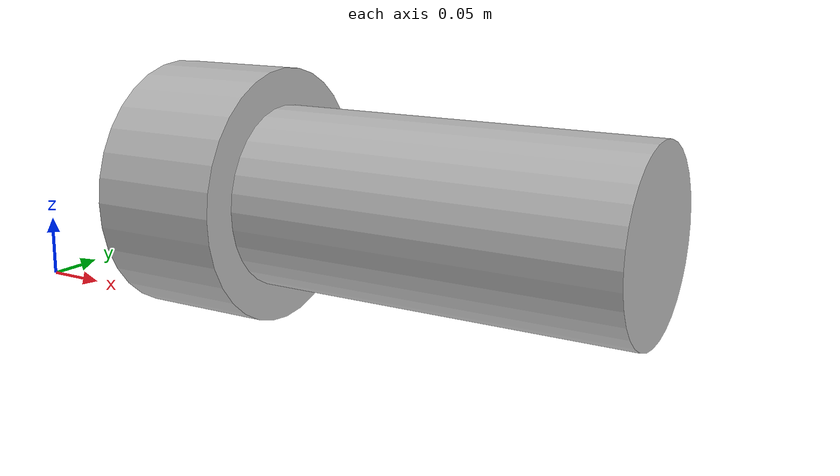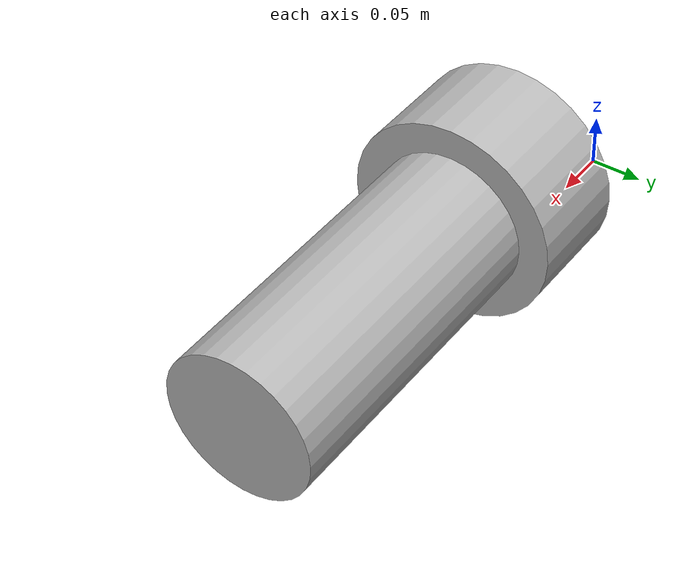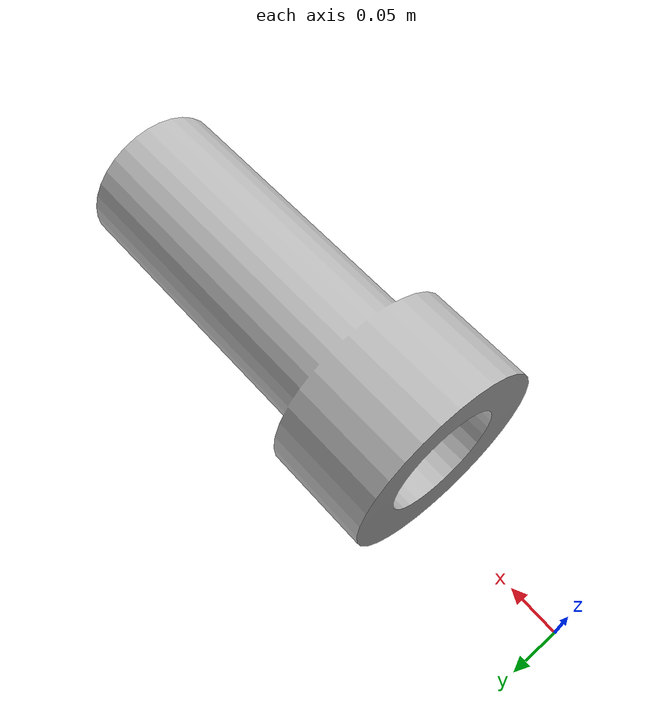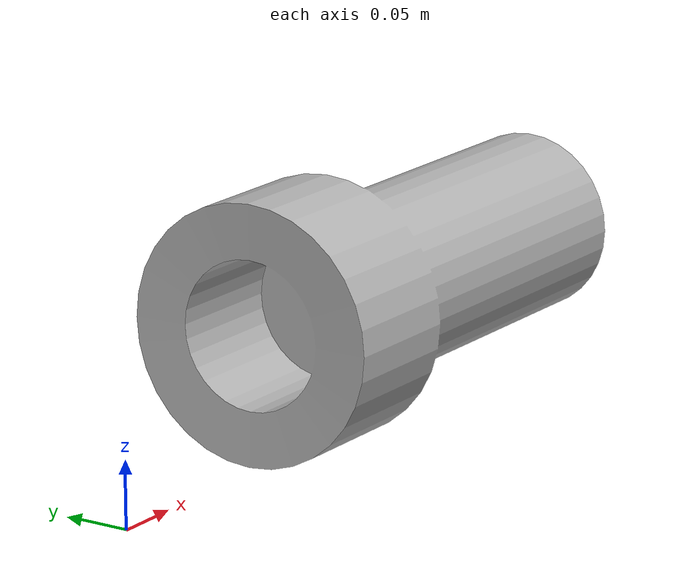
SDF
<?xml version='1.0'?>
<sdf version='1.4'>
  <model name='standpipe'>
    <static>true</static>
    <link name="standpipe">
      <pose>0 0 0.1 0 1.57078 0</pose>
      <collision name="collision_stopper">
        <pose>0 0 0.22 0 0 0</pose>
        <geometry>
          <cylinder>
            <radius>0.069</radius>
            <length>0.1</length>
          </cylinder>
        </geometry>
        <surface>
          <friction>
            <ode>
              <mu>0.5</mu>
              <mu2>0.5</mu2>
            </ode>
          </friction>
        </surface>
      </collision>

      <collision name="collision">
        <pose>0 0 0.15 0 0 0</pose>
        <geometry>
          <mesh>
            <uri>model://standpipe/meshes/standpipe.dae</uri>
          </mesh>
        </geometry>
        <surface>
          <friction>
            <ode>
              <mu>0.5</mu>
              <mu2>0.5</mu2>
            </ode>
          </friction>
        </surface>
      </collision>

      <visual name="visual">
        <pose>0 0 0.15 0 0 0</pose>
        <geometry>
          <mesh>
            <uri>model://standpipe/meshes/standpipe.dae</uri>
          </mesh>
        </geometry>
      </visual>
    </link>
  </model>
</sdf>
